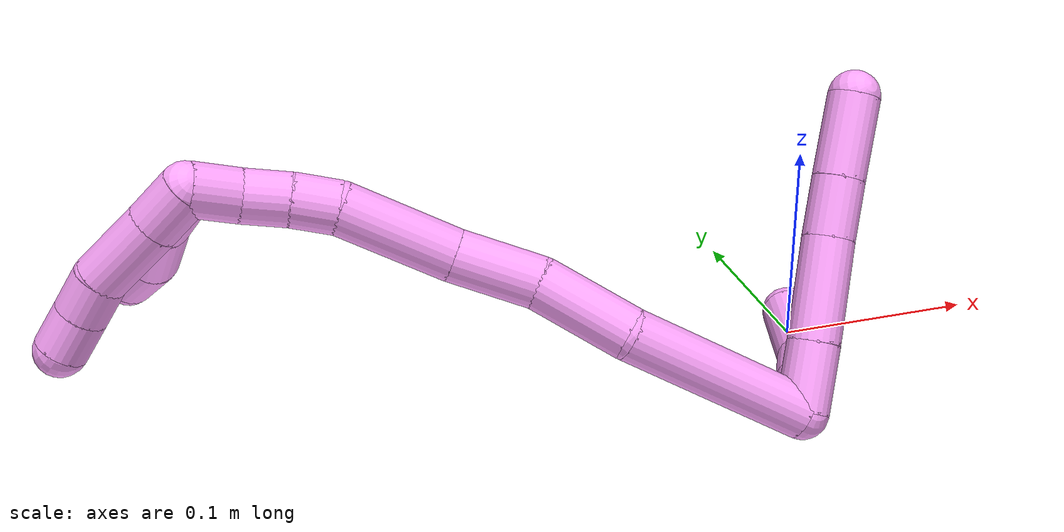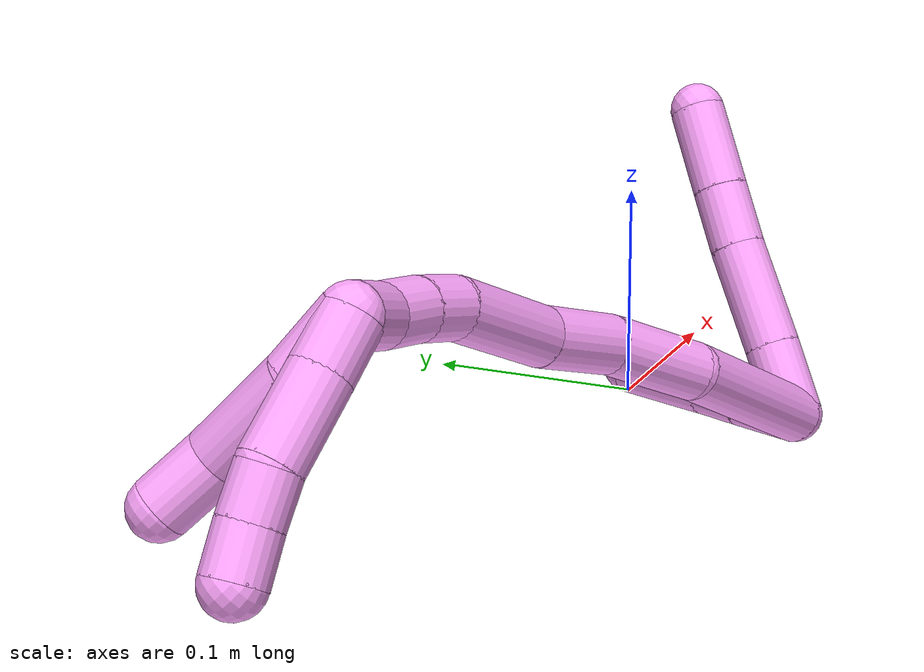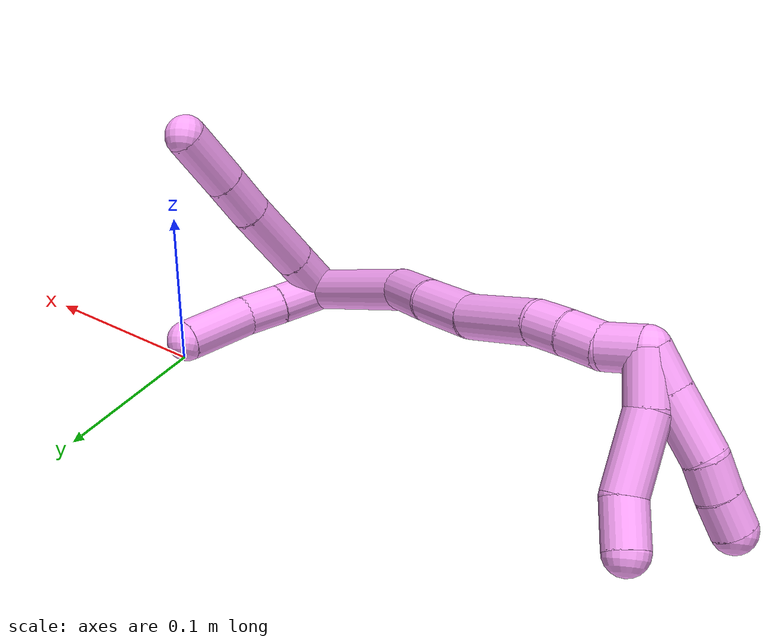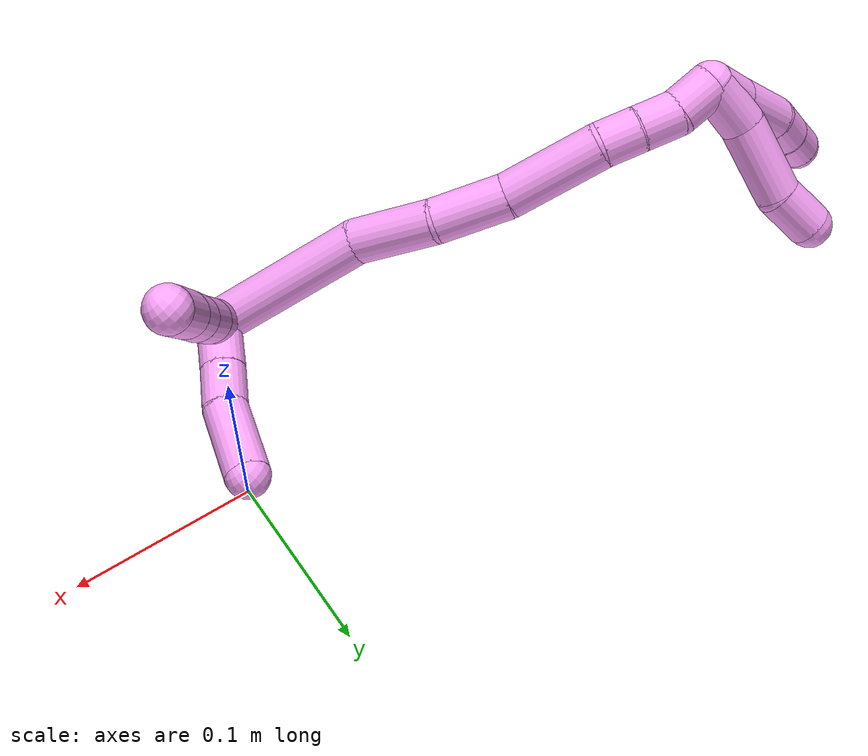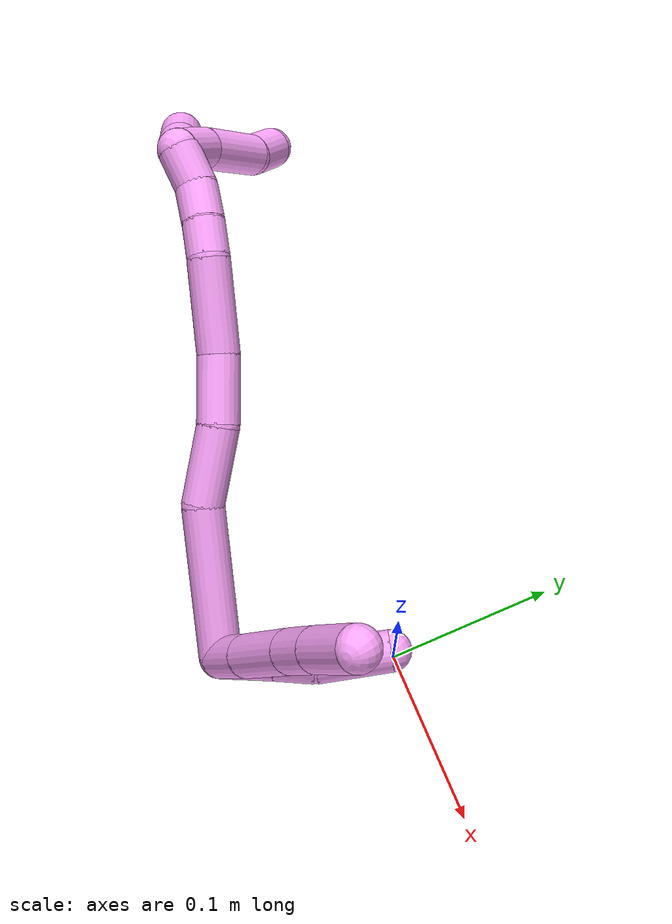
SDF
<sdf version="1.7">
 <world name="default">
  <model name="photoneo_s_sensor">
   <static>1</static>
   <pose>0 0 2 1.57079 1.57079 3.14159</pose>
   <link name="link">
    <inertial><mass>0.1</mass></inertial>
    <sensor name="sensor" type="depth">
     <update_rate>30</update_rate>
     <camera>
      <horizontal_fov>1.22</horizontal_fov>
      <image><width>1920</width><height>1200</height><format>B8G8R8</format></image>
      <clip><near>0.1</near><far>4</far></clip>
      <depth_camera><output>points</output></depth_camera>
     </camera>
     <plugin name="camera_plugin" filename="libgazebo_ros_depth_camera.so">
      <baseline>0.2</baseline>
      <alwaysOn>1</alwaysOn>
      <updateRate>0.0</updateRate>
      <cameraName>camera_ir</cameraName>
      <imageTopicName>/camera/color/image_raw</imageTopicName>
      <cameraInfoTopicName>/camera/color/camera_info</cameraInfoTopicName>
      <depthImageTopicName>/camera/depth/image_raw</depthImageTopicName>
      <depthImageCameraInfoTopicName>/camera/depth/camera_info</depthImageCameraInfoTopicName>
      <pointCloudTopicName>/camera/depth/points</pointCloudTopicName>
      <frameName>fr_optical</frameName>
      <pointCloudCutoff>0.1</pointCloudCutoff>
      <pointCloudCutoffMax>2.0</pointCloudCutoffMax>
      <distortionK1>0</distortionK1>
      <distortionK2>0</distortionK2>
      <distortionK3>0</distortionK3>
      <distortionT1>0</distortionT1>
      <distortionT2>0</distortionT2>
      <CxPrime>0</CxPrime>
      <Cx>0</Cx>
      <Cy>0</Cy>
      <focalLength>0</focalLength>
      <hackBaseline>0</hackBaseline>
     </plugin>
    </sensor>
   </link>
  </model>
  <model name="bin">
   <static>1</static>
   <link name="bottom">
    <collision name="collision-bottom">
     <pose>0 0 -0.01 0 -0 0</pose>
     <geometry><box><size>0.8 0.6 0.02</size></box></geometry>
     <surface>
      <friction><ode><mu>100</mu><mu2>100</mu2></ode></friction>
      <contact><collide_bitmask>65535</collide_bitmask></contact>
     </surface>
    </collision>
   </link>
   <link name="west_wall">
    <collision name="collision-west_wall">
     <pose>-0.41 0 0.1 0 -0 0</pose>
     <geometry><box><size>0.02 0.6 0.2</size></box></geometry>
     <surface>
      <friction><ode><mu>100</mu><mu2>100</mu2></ode></friction>
      <contact><collide_bitmask>65535</collide_bitmask></contact>
     </surface>
    </collision>
   </link>
   <link name="east_wall">
    <collision name="collision-east_wall">
     <pose>0.41 0 0.1 0 -0 0</pose>
     <geometry><box><size>0.02 0.6 0.2</size></box></geometry>
     <surface>
      <friction><ode><mu>100</mu><mu2>100</mu2></ode></friction>
      <contact><collide_bitmask>65535</collide_bitmask></contact>
     </surface>
    </collision>
   </link>
   <link name="south_wall">
    <collision name="collision-south_wall">
     <pose>0 -0.31 0.1 0 -0 0</pose>
     <geometry><box><size>0.8 0.02 0.2</size></box></geometry>
     <surface>
      <friction><ode><mu>100</mu><mu2>100</mu2></ode></friction>
      <contact><collide_bitmask>65535</collide_bitmask></contact>
     </surface>
    </collision>
   </link>
   <link name="north_wall">
    <collision name="collision-north_wall">
     <pose>0 0.31 0.1 0 -0 0</pose>
     <geometry><box><size>0.8 0.02 0.2</size></box></geometry>
     <surface>
      <friction><ode><mu>100</mu><mu2>100</mu2></ode></friction>
      <contact><collide_bitmask>65535</collide_bitmask></contact>
     </surface>
    </collision>
   </link>
  </model>
  <model name="4">
   <static>0</static>
   <link name="4">
    <collision name="collision-cylinder-e_1_2_8">
     <pose>-0.009364 -0.011858 -0.006266 2.05689 -0.609514 -0.962144</pose>
     <geometry><cylinder><radius>0.0125</radius><length>0.032714</length></cylinder></geometry>
     <surface>
      <friction><ode><mu>1.16</mu><mu2>1.16</mu2><slip1>0</slip1><slip2>0</slip2></ode></friction>
      <contact><ode><kp>1e+06</kp><kd>1</kd><max_vel>0</max_vel><min_depth>0.001</min_depth></ode></contact>
     </surface>
    </collision>
    <visual name="visual-cylinder-e_1_2_8">
     <pose>-0.009364 -0.011858 -0.006266 2.05689 -0.609514 -0.962144</pose>
     <geometry><cylinder><radius>0.0125</radius><length>0.032714</length></cylinder></geometry>
     <material><ambient>1 0.65098 0.996078 1</ambient></material>
    </visual>
    <collision name="collision-cylinder-e_2_8_9">
     <pose>-0.033213 -0.041235 -0.021553 2.04636 -0.633892 -0.986945</pose>
     <geometry><cylinder><radius>0.0125</radius><length>0.048914</length></cylinder></geometry>
     <surface>
      <friction><ode><mu>1.16</mu><mu2>1.16</mu2><slip1>0</slip1><slip2>0</slip2></ode></friction>
      <contact><ode><kp>1e+06</kp><kd>1</kd><max_vel>0</max_vel><min_depth>0.001</min_depth></ode></contact>
     </surface>
    </collision>
    <visual name="visual-cylinder-e_2_8_9">
     <pose>-0.033213 -0.041235 -0.021553 2.04636 -0.633892 -0.986945</pose>
     <geometry><cylinder><radius>0.0125</radius><length>0.048914</length></cylinder></geometry>
     <material><ambient>1 0.65098 0.996078 1</ambient></material>
    </visual>
    <collision name="collision-cylinder-e_3_9_10">
     <pose>-0.055996 -0.0688 -0.036472 2.10164 -0.618957 -1.01867</pose>
     <geometry><cylinder><radius>0.0125</radius><length>0.028603</length></cylinder></geometry>
     <surface>
      <friction><ode><mu>1.16</mu><mu2>1.16</mu2><slip1>0</slip1><slip2>0</slip2></ode></friction>
      <contact><ode><kp>1e+06</kp><kd>1</kd><max_vel>0</max_vel><min_depth>0.001</min_depth></ode></contact>
     </surface>
    </collision>
    <visual name="visual-cylinder-e_3_9_10">
     <pose>-0.055996 -0.0688 -0.036472 2.10164 -0.618957 -1.01867</pose>
     <geometry><cylinder><radius>0.0125</radius><length>0.028603</length></cylinder></geometry>
     <material><ambient>1 0.65098 0.996078 1</ambient></material>
    </visual>
    <collision name="collision-cylinder-e_4_10_6">
     <pose>-0.075544 -0.093025 -0.050601 2.09678 -0.601372 -0.98805</pose>
     <geometry><cylinder><radius>0.0125</radius><length>0.039769</length></cylinder></geometry>
     <surface>
      <friction><ode><mu>1.16</mu><mu2>1.16</mu2><slip1>0</slip1><slip2>0</slip2></ode></friction>
      <contact><ode><kp>1e+06</kp><kd>1</kd><max_vel>0</max_vel><min_depth>0.001</min_depth></ode></contact>
     </surface>
    </collision>
    <visual name="visual-cylinder-e_4_10_6">
     <pose>-0.075544 -0.093025 -0.050601 2.09678 -0.601372 -0.98805</pose>
     <geometry><cylinder><radius>0.0125</radius><length>0.039769</length></cylinder></geometry>
     <material><ambient>1 0.65098 0.996078 1</ambient></material>
    </visual>
    <collision name="collision-cylinder-e_1_2_11">
     <pose>-0.001791 -0.013565 0.007407 1.07099 -0.115339 -0.068483</pose>
     <geometry><cylinder><radius>0.0125</radius><length>0.031118</length></cylinder></geometry>
     <surface>
      <friction><ode><mu>1.16</mu><mu2>1.16</mu2><slip1>0</slip1><slip2>0</slip2></ode></friction>
      <contact><ode><kp>1e+06</kp><kd>1</kd><max_vel>0</max_vel><min_depth>0.001</min_depth></ode></contact>
     </surface>
    </collision>
    <visual name="visual-cylinder-e_1_2_11">
     <pose>-0.001791 -0.013565 0.007407 1.07099 -0.115339 -0.068483</pose>
     <geometry><cylinder><radius>0.0125</radius><length>0.031118</length></cylinder></geometry>
     <material><ambient>1 0.65098 0.996078 1</ambient></material>
    </visual>
    <collision name="collision-cylinder-e_2_11_12">
     <pose>-0.004712 -0.037863 0.020399 1.09098 -0.093212 -0.056598</pose>
     <geometry><cylinder><radius>0.0125</radius><length>0.024303</length></cylinder></geometry>
     <surface>
      <friction><ode><mu>1.16</mu><mu2>1.16</mu2><slip1>0</slip1><slip2>0</slip2></ode></friction>
      <contact><ode><kp>1e+06</kp><kd>1</kd><max_vel>0</max_vel><min_depth>0.001</min_depth></ode></contact>
     </surface>
    </collision>
    <visual name="visual-cylinder-e_2_11_12">
     <pose>-0.004712 -0.037863 0.020399 1.09098 -0.093212 -0.056598</pose>
     <geometry><cylinder><radius>0.0125</radius><length>0.024303</length></cylinder></geometry>
     <material><ambient>1 0.65098 0.996078 1</ambient></material>
    </visual>
    <collision name="collision-cylinder-e_3_12_5">
     <pose>-0.012491 -0.066415 0.037607 0.992825 -0.302875 -0.164944</pose>
     <geometry><cylinder><radius>0.0125</radius><length>0.044579</length></cylinder></geometry>
     <surface>
      <friction><ode><mu>1.16</mu><mu2>1.16</mu2><slip1>0</slip1><slip2>0</slip2></ode></friction>
      <contact><ode><kp>1e+06</kp><kd>1</kd><max_vel>0</max_vel><min_depth>0.001</min_depth></ode></contact>
     </surface>
    </collision>
    <visual name="visual-cylinder-e_3_12_5">
     <pose>-0.012491 -0.066415 0.037607 0.992825 -0.302875 -0.164944</pose>
     <geometry><cylinder><radius>0.0125</radius><length>0.044579</length></cylinder></geometry>
     <material><ambient>1 0.65098 0.996078 1</ambient></material>
    </visual>
    <collision name="collision-cylinder-e_1_2_13">
     <pose>-0.041728 0.016325 0.005831 -1.22777 -1.17706 0.879291</pose>
     <geometry><cylinder><radius>0.0125</radius><length>0.090372</length></cylinder></geometry>
     <surface>
      <friction><ode><mu>1.16</mu><mu2>1.16</mu2><slip1>0</slip1><slip2>0</slip2></ode></friction>
      <contact><ode><kp>1e+06</kp><kd>1</kd><max_vel>0</max_vel><min_depth>0.001</min_depth></ode></contact>
     </surface>
    </collision>
    <visual name="visual-cylinder-e_1_2_13">
     <pose>-0.041728 0.016325 0.005831 -1.22777 -1.17706 0.879291</pose>
     <geometry><cylinder><radius>0.0125</radius><length>0.090372</length></cylinder></geometry>
     <material><ambient>1 0.65098 0.996078 1</ambient></material>
    </visual>
    <collision name="collision-cylinder-e_2_13_14">
     <pose>-0.105407 0.035566 0.018889 -0.383367 -1.2296 0.272359</pose>
     <geometry><cylinder><radius>0.0125</radius><length>0.046586</length></cylinder></geometry>
     <surface>
      <friction><ode><mu>1.16</mu><mu2>1.16</mu2><slip1>0</slip1><slip2>0</slip2></ode></friction>
      <contact><ode><kp>1e+06</kp><kd>1</kd><max_vel>0</max_vel><min_depth>0.001</min_depth></ode></contact>
     </surface>
    </collision>
    <visual name="visual-cylinder-e_2_13_14">
     <pose>-0.105407 0.035566 0.018889 -0.383367 -1.2296 0.272359</pose>
     <geometry><cylinder><radius>0.0125</radius><length>0.046586</length></cylinder></geometry>
     <material><ambient>1 0.65098 0.996078 1</ambient></material>
    </visual>
    <collision name="collision-cylinder-e_3_14_15">
     <pose>-0.145187 0.045589 0.032749 -0.820066 -1.07166 0.505169</pose>
     <geometry><cylinder><radius>0.0125</radius><length>0.040615</length></cylinder></geometry>
     <surface>
      <friction><ode><mu>1.16</mu><mu2>1.16</mu2><slip1>0</slip1><slip2>0</slip2></ode></friction>
      <contact><ode><kp>1e+06</kp><kd>1</kd><max_vel>0</max_vel><min_depth>0.001</min_depth></ode></contact>
     </surface>
    </collision>
    <visual name="visual-cylinder-e_3_14_15">
     <pose>-0.145187 0.045589 0.032749 -0.820066 -1.07166 0.505169</pose>
     <geometry><cylinder><radius>0.0125</radius><length>0.040615</length></cylinder></geometry>
     <material><ambient>1 0.65098 0.996078 1</ambient></material>
    </visual>
    <collision name="collision-cylinder-e_4_15_16">
     <pose>-0.18814 0.063046 0.043913 -1.15795 -1.14816 0.799974</pose>
     <geometry><cylinder><radius>0.0125</radius><length>0.055095</length></cylinder></geometry>
     <surface>
      <friction><ode><mu>1.16</mu><mu2>1.16</mu2><slip1>0</slip1><slip2>0</slip2></ode></friction>
      <contact><ode><kp>1e+06</kp><kd>1</kd><max_vel>0</max_vel><min_depth>0.001</min_depth></ode></contact>
     </surface>
    </collision>
    <visual name="visual-cylinder-e_4_15_16">
     <pose>-0.18814 0.063046 0.043913 -1.15795 -1.14816 0.799974</pose>
     <geometry><cylinder><radius>0.0125</radius><length>0.055095</length></cylinder></geometry>
     <material><ambient>1 0.65098 0.996078 1</ambient></material>
    </visual>
    <collision name="collision-cylinder-e_5_16_17">
     <pose>-0.221829 0.078838 0.051874 -1.00881 -0.926666 0.538219</pose>
     <geometry><cylinder><radius>0.0125</radius><length>0.021422</length></cylinder></geometry>
     <surface>
      <friction><ode><mu>1.16</mu><mu2>1.16</mu2><slip1>0</slip1><slip2>0</slip2></ode></friction>
      <contact><ode><kp>1e+06</kp><kd>1</kd><max_vel>0</max_vel><min_depth>0.001</min_depth></ode></contact>
     </surface>
    </collision>
    <visual name="visual-cylinder-e_5_16_17">
     <pose>-0.221829 0.078838 0.051874 -1.00881 -0.926666 0.538219</pose>
     <geometry><cylinder><radius>0.0125</radius><length>0.021422</length></cylinder></geometry>
     <material><ambient>1 0.65098 0.996078 1</ambient></material>
    </visual>
    <collision name="collision-cylinder-e_6_17_18">
     <pose>-0.238677 0.090691 0.059153 -1.02971 -0.836452 0.492677</pose>
     <geometry><cylinder><radius>0.0125</radius><length>0.022319</length></cylinder></geometry>
     <surface>
      <friction><ode><mu>1.16</mu><mu2>1.16</mu2><slip1>0</slip1><slip2>0</slip2></ode></friction>
      <contact><ode><kp>1e+06</kp><kd>1</kd><max_vel>0</max_vel><min_depth>0.001</min_depth></ode></contact>
     </surface>
    </collision>
    <visual name="visual-cylinder-e_6_17_18">
     <pose>-0.238677 0.090691 0.059153 -1.02971 -0.836452 0.492677</pose>
     <geometry><cylinder><radius>0.0125</radius><length>0.022319</length></cylinder></geometry>
     <material><ambient>1 0.65098 0.996078 1</ambient></material>
    </visual>
    <collision name="collision-cylinder-e_7_18_1">
     <pose>-0.255572 0.105108 0.063931 -1.45565 -0.818437 0.737511</pose>
     <geometry><cylinder><radius>0.0125</radius><length>0.023592</length></cylinder></geometry>
     <surface>
      <friction><ode><mu>1.16</mu><mu2>1.16</mu2><slip1>0</slip1><slip2>0</slip2></ode></friction>
      <contact><ode><kp>1e+06</kp><kd>1</kd><max_vel>0</max_vel><min_depth>0.001</min_depth></ode></contact>
     </surface>
    </collision>
    <visual name="visual-cylinder-e_7_18_1">
     <pose>-0.255572 0.105108 0.063931 -1.45565 -0.818437 0.737511</pose>
     <geometry><cylinder><radius>0.0125</radius><length>0.023592</length></cylinder></geometry>
     <material><ambient>1 0.65098 0.996078 1</ambient></material>
    </visual>
    <collision name="collision-cylinder-e_1_1_19">
     <pose>-0.263835 0.119659 0.074508 -0.595797 0.029913 -0.009185</pose>
     <geometry><cylinder><radius>0.0125</radius><length>0.02333</length></cylinder></geometry>
     <surface>
      <friction><ode><mu>1.16</mu><mu2>1.16</mu2><slip1>0</slip1><slip2>0</slip2></ode></friction>
      <contact><ode><kp>1e+06</kp><kd>1</kd><max_vel>0</max_vel><min_depth>0.001</min_depth></ode></contact>
     </surface>
    </collision>
    <visual name="visual-cylinder-e_1_1_19">
     <pose>-0.263835 0.119659 0.074508 -0.595797 0.029913 -0.009185</pose>
     <geometry><cylinder><radius>0.0125</radius><length>0.02333</length></cylinder></geometry>
     <material><ambient>1 0.65098 0.996078 1</ambient></material>
    </visual>
    <collision name="collision-cylinder-e_2_19_20">
     <pose>-0.263403 0.136668 0.098947 -0.615895 0.004565 -0.001452</pose>
     <geometry><cylinder><radius>0.0125</radius><length>0.036233</length></cylinder></geometry>
     <surface>
      <friction><ode><mu>1.16</mu><mu2>1.16</mu2><slip1>0</slip1><slip2>0</slip2></ode></friction>
      <contact><ode><kp>1e+06</kp><kd>1</kd><max_vel>0</max_vel><min_depth>0.001</min_depth></ode></contact>
     </surface>
    </collision>
    <visual name="visual-cylinder-e_2_19_20">
     <pose>-0.263403 0.136668 0.098947 -0.615895 0.004565 -0.001452</pose>
     <geometry><cylinder><radius>0.0125</radius><length>0.036233</length></cylinder></geometry>
     <material><ambient>1 0.65098 0.996078 1</ambient></material>
    </visual>
    <collision name="collision-cylinder-e_3_20_21">
     <pose>-0.260907 0.152336 0.122006 -0.561442 0.24216 -0.070138</pose>
     <geometry><cylinder><radius>0.0125</radius><length>0.020132</length></cylinder></geometry>
     <surface>
      <friction><ode><mu>1.16</mu><mu2>1.16</mu2><slip1>0</slip1><slip2>0</slip2></ode></friction>
      <contact><ode><kp>1e+06</kp><kd>1</kd><max_vel>0</max_vel><min_depth>0.001</min_depth></ode></contact>
     </surface>
    </collision>
    <visual name="visual-cylinder-e_3_20_21">
     <pose>-0.260907 0.152336 0.122006 -0.561442 0.24216 -0.070138</pose>
     <geometry><cylinder><radius>0.0125</radius><length>0.020132</length></cylinder></geometry>
     <material><ambient>1 0.65098 0.996078 1</ambient></material>
    </visual>
    <collision name="collision-cylinder-e_4_21_4">
     <pose>-0.255931 0.163452 0.138123 -0.645937 0.255165 -0.085814</pose>
     <geometry><cylinder><radius>0.0125</radius><length>0.020304</length></cylinder></geometry>
     <surface>
      <friction><ode><mu>1.16</mu><mu2>1.16</mu2><slip1>0</slip1><slip2>0</slip2></ode></friction>
      <contact><ode><kp>1e+06</kp><kd>1</kd><max_vel>0</max_vel><min_depth>0.001</min_depth></ode></contact>
     </surface>
    </collision>
    <visual name="visual-cylinder-e_4_21_4">
     <pose>-0.255931 0.163452 0.138123 -0.645937 0.255165 -0.085814</pose>
     <geometry><cylinder><radius>0.0125</radius><length>0.020304</length></cylinder></geometry>
     <material><ambient>1 0.65098 0.996078 1</ambient></material>
    </visual>
    <collision name="collision-cylinder-e_1_1_22">
     <pose>-0.263285 0.1146 0.079669 -0.099892 0.060314 -0.003016</pose>
     <geometry><cylinder><radius>0.0125</radius><length>0.029826</length></cylinder></geometry>
     <surface>
      <friction><ode><mu>1.16</mu><mu2>1.16</mu2><slip1>0</slip1><slip2>0</slip2></ode></friction>
      <contact><ode><kp>1e+06</kp><kd>1</kd><max_vel>0</max_vel><min_depth>0.001</min_depth></ode></contact>
     </surface>
    </collision>
    <visual name="visual-cylinder-e_1_1_22">
     <pose>-0.263285 0.1146 0.079669 -0.099892 0.060314 -0.003016</pose>
     <geometry><cylinder><radius>0.0125</radius><length>0.029826</length></cylinder></geometry>
     <material><ambient>1 0.65098 0.996078 1</ambient></material>
    </visual>
    <collision name="collision-cylinder-e_2_22_23">
     <pose>-0.259661 0.112441 0.11586 0.168773 0.124986 0.010586</pose>
     <geometry><cylinder><radius>0.0125</radius><length>0.043718</length></cylinder></geometry>
     <surface>
      <friction><ode><mu>1.16</mu><mu2>1.16</mu2><slip1>0</slip1><slip2>0</slip2></ode></friction>
      <contact><ode><kp>1e+06</kp><kd>1</kd><max_vel>0</max_vel><min_depth>0.001</min_depth></ode></contact>
     </surface>
    </collision>
    <visual name="visual-cylinder-e_2_22_23">
     <pose>-0.259661 0.112441 0.11586 0.168773 0.124986 0.010586</pose>
     <geometry><cylinder><radius>0.0125</radius><length>0.043718</length></cylinder></geometry>
     <material><ambient>1 0.65098 0.996078 1</ambient></material>
    </visual>
    <collision name="collision-cylinder-e_3_23_3">
     <pose>-0.257984 0.109948 0.150377 -0.087287 -0.079317 0.003466</pose>
     <geometry><cylinder><radius>0.0125</radius><length>0.026456</length></cylinder></geometry>
     <surface>
      <friction><ode><mu>1.16</mu><mu2>1.16</mu2><slip1>0</slip1><slip2>0</slip2></ode></friction>
      <contact><ode><kp>1e+06</kp><kd>1</kd><max_vel>0</max_vel><min_depth>0.001</min_depth></ode></contact>
     </surface>
    </collision>
    <visual name="visual-cylinder-e_3_23_3">
     <pose>-0.257984 0.109948 0.150377 -0.087287 -0.079317 0.003466</pose>
     <geometry><cylinder><radius>0.0125</radius><length>0.026456</length></cylinder></geometry>
     <material><ambient>1 0.65098 0.996078 1</ambient></material>
    </visual>
    <collision name="collision-sphere-3">
     <pose>-0.259032 0.111097 0.163513 0 -0 0</pose>
     <geometry><sphere><radius>0.0125</radius></sphere></geometry>
     <surface>
      <friction><ode><mu>1.16</mu><mu2>1.16</mu2><slip1>0</slip1><slip2>0</slip2></ode></friction>
      <contact><ode><kp>1e+06</kp><kd>1</kd><max_vel>0</max_vel><min_depth>0.001</min_depth></ode></contact>
     </surface>
    </collision>
    <visual name="visual-sphere-3">
     <pose>-0.259032 0.111097 0.163513 0 -0 0</pose>
     <geometry><sphere><radius>0.0125</radius></sphere></geometry>
     <material><ambient>1 0.65098 0.996078 1</ambient></material>
    </visual>
    <collision name="collision-sphere-23">
     <pose>-0.256936 0.108798 0.137241 0 -0 0</pose>
     <geometry><sphere><radius>0.0125</radius></sphere></geometry>
     <surface>
      <friction><ode><mu>1.16</mu><mu2>1.16</mu2><slip1>0</slip1><slip2>0</slip2></ode></friction>
      <contact><ode><kp>1e+06</kp><kd>1</kd><max_vel>0</max_vel><min_depth>0.001</min_depth></ode></contact>
     </surface>
    </collision>
    <visual name="visual-sphere-23">
     <pose>-0.256936 0.108798 0.137241 0 -0 0</pose>
     <geometry><sphere><radius>0.0125</radius></sphere></geometry>
     <material><ambient>1 0.65098 0.996078 1</ambient></material>
    </visual>
    <collision name="collision-sphere-22">
     <pose>-0.262386 0.116085 0.09448 0 -0 0</pose>
     <geometry><sphere><radius>0.0125</radius></sphere></geometry>
     <surface>
      <friction><ode><mu>1.16</mu><mu2>1.16</mu2><slip1>0</slip1><slip2>0</slip2></ode></friction>
      <contact><ode><kp>1e+06</kp><kd>1</kd><max_vel>0</max_vel><min_depth>0.001</min_depth></ode></contact>
     </surface>
    </collision>
    <visual name="visual-sphere-22">
     <pose>-0.262386 0.116085 0.09448 0 -0 0</pose>
     <geometry><sphere><radius>0.0125</radius></sphere></geometry>
     <material><ambient>1 0.65098 0.996078 1</ambient></material>
    </visual>
    <collision name="collision-sphere-4">
     <pose>-0.253368 0.169365 0.145967 0 -0 0</pose>
     <geometry><sphere><radius>0.0125</radius></sphere></geometry>
     <surface>
      <friction><ode><mu>1.16</mu><mu2>1.16</mu2><slip1>0</slip1><slip2>0</slip2></ode></friction>
      <contact><ode><kp>1e+06</kp><kd>1</kd><max_vel>0</max_vel><min_depth>0.001</min_depth></ode></contact>
     </surface>
    </collision>
    <visual name="visual-sphere-4">
     <pose>-0.253368 0.169365 0.145967 0 -0 0</pose>
     <geometry><sphere><radius>0.0125</radius></sphere></geometry>
     <material><ambient>1 0.65098 0.996078 1</ambient></material>
    </visual>
    <collision name="collision-sphere-21">
     <pose>-0.258493 0.157539 0.130279 0 -0 0</pose>
     <geometry><sphere><radius>0.0125</radius></sphere></geometry>
     <surface>
      <friction><ode><mu>1.16</mu><mu2>1.16</mu2><slip1>0</slip1><slip2>0</slip2></ode></friction>
      <contact><ode><kp>1e+06</kp><kd>1</kd><max_vel>0</max_vel><min_depth>0.001</min_depth></ode></contact>
     </surface>
    </collision>
    <visual name="visual-sphere-21">
     <pose>-0.258493 0.157539 0.130279 0 -0 0</pose>
     <geometry><sphere><radius>0.0125</radius></sphere></geometry>
     <material><ambient>1 0.65098 0.996078 1</ambient></material>
    </visual>
    <collision name="collision-sphere-20">
     <pose>-0.263321 0.147133 0.113734 0 -0 0</pose>
     <geometry><sphere><radius>0.0125</radius></sphere></geometry>
     <surface>
      <friction><ode><mu>1.16</mu><mu2>1.16</mu2><slip1>0</slip1><slip2>0</slip2></ode></friction>
      <contact><ode><kp>1e+06</kp><kd>1</kd><max_vel>0</max_vel><min_depth>0.001</min_depth></ode></contact>
     </surface>
    </collision>
    <visual name="visual-sphere-20">
     <pose>-0.263321 0.147133 0.113734 0 -0 0</pose>
     <geometry><sphere><radius>0.0125</radius></sphere></geometry>
     <material><ambient>1 0.65098 0.996078 1</ambient></material>
    </visual>
    <collision name="collision-sphere-11">
     <pose>-0.003581 -0.02713 0.014814 0 -0 0</pose>
     <geometry><sphere><radius>0.0125</radius></sphere></geometry>
     <surface>
      <friction><ode><mu>1.16</mu><mu2>1.16</mu2><slip1>0</slip1><slip2>0</slip2></ode></friction>
      <contact><ode><kp>1e+06</kp><kd>1</kd><max_vel>0</max_vel><min_depth>0.001</min_depth></ode></contact>
     </surface>
    </collision>
    <visual name="visual-sphere-11">
     <pose>-0.003581 -0.02713 0.014814 0 -0 0</pose>
     <geometry><sphere><radius>0.0125</radius></sphere></geometry>
     <material><ambient>1 0.65098 0.996078 1</ambient></material>
    </visual>
    <collision name="collision-sphere-6">
     <pose>-0.086794 -0.107204 -0.058833 0 -0 0</pose>
     <geometry><sphere><radius>0.0125</radius></sphere></geometry>
     <surface>
      <friction><ode><mu>1.16</mu><mu2>1.16</mu2><slip1>0</slip1><slip2>0</slip2></ode></friction>
      <contact><ode><kp>1e+06</kp><kd>1</kd><max_vel>0</max_vel><min_depth>0.001</min_depth></ode></contact>
     </surface>
    </collision>
    <visual name="visual-sphere-6">
     <pose>-0.086794 -0.107204 -0.058833 0 -0 0</pose>
     <geometry><sphere><radius>0.0125</radius></sphere></geometry>
     <material><ambient>1 0.65098 0.996078 1</ambient></material>
    </visual>
    <collision name="collision-sphere-10">
     <pose>-0.064294 -0.078845 -0.042369 0 -0 0</pose>
     <geometry><sphere><radius>0.0125</radius></sphere></geometry>
     <surface>
      <friction><ode><mu>1.16</mu><mu2>1.16</mu2><slip1>0</slip1><slip2>0</slip2></ode></friction>
      <contact><ode><kp>1e+06</kp><kd>1</kd><max_vel>0</max_vel><min_depth>0.001</min_depth></ode></contact>
     </surface>
    </collision>
    <visual name="visual-sphere-10">
     <pose>-0.064294 -0.078845 -0.042369 0 -0 0</pose>
     <geometry><sphere><radius>0.0125</radius></sphere></geometry>
     <material><ambient>1 0.65098 0.996078 1</ambient></material>
    </visual>
    <collision name="collision-sphere-9">
     <pose>-0.047699 -0.058754 -0.030575 0 -0 0</pose>
     <geometry><sphere><radius>0.0125</radius></sphere></geometry>
     <surface>
      <friction><ode><mu>1.16</mu><mu2>1.16</mu2><slip1>0</slip1><slip2>0</slip2></ode></friction>
      <contact><ode><kp>1e+06</kp><kd>1</kd><max_vel>0</max_vel><min_depth>0.001</min_depth></ode></contact>
     </surface>
    </collision>
    <visual name="visual-sphere-9">
     <pose>-0.047699 -0.058754 -0.030575 0 -0 0</pose>
     <geometry><sphere><radius>0.0125</radius></sphere></geometry>
     <material><ambient>1 0.65098 0.996078 1</ambient></material>
    </visual>
    <collision name="collision-sphere-2">
     <geometry><sphere><radius>0.0125</radius></sphere></geometry>
     <surface>
      <friction><ode><mu>1.16</mu><mu2>1.16</mu2><slip1>0</slip1><slip2>0</slip2></ode></friction>
      <contact><ode><kp>1e+06</kp><kd>1</kd><max_vel>0</max_vel><min_depth>0.001</min_depth></ode></contact>
     </surface>
    </collision>
    <visual name="visual-sphere-2">
     <geometry><sphere><radius>0.0125</radius></sphere></geometry>
     <material><ambient>1 0.65098 0.996078 1</ambient></material>
    </visual>
    <collision name="collision-sphere-19">
     <pose>-0.263486 0.126202 0.084159 0 -0 0</pose>
     <geometry><sphere><radius>0.0125</radius></sphere></geometry>
     <surface>
      <friction><ode><mu>1.16</mu><mu2>1.16</mu2><slip1>0</slip1><slip2>0</slip2></ode></friction>
      <contact><ode><kp>1e+06</kp><kd>1</kd><max_vel>0</max_vel><min_depth>0.001</min_depth></ode></contact>
     </surface>
    </collision>
    <visual name="visual-sphere-19">
     <pose>-0.263486 0.126202 0.084159 0 -0 0</pose>
     <geometry><sphere><radius>0.0125</radius></sphere></geometry>
     <material><ambient>1 0.65098 0.996078 1</ambient></material>
    </visual>
    <collision name="collision-sphere-8">
     <pose>-0.018728 -0.023716 -0.012531 0 -0 0</pose>
     <geometry><sphere><radius>0.0125</radius></sphere></geometry>
     <surface>
      <friction><ode><mu>1.16</mu><mu2>1.16</mu2><slip1>0</slip1><slip2>0</slip2></ode></friction>
      <contact><ode><kp>1e+06</kp><kd>1</kd><max_vel>0</max_vel><min_depth>0.001</min_depth></ode></contact>
     </surface>
    </collision>
    <visual name="visual-sphere-8">
     <pose>-0.018728 -0.023716 -0.012531 0 -0 0</pose>
     <geometry><sphere><radius>0.0125</radius></sphere></geometry>
     <material><ambient>1 0.65098 0.996078 1</ambient></material>
    </visual>
    <collision name="collision-sphere-12">
     <pose>-0.005843 -0.048595 0.025984 0 -0 0</pose>
     <geometry><sphere><radius>0.0125</radius></sphere></geometry>
     <surface>
      <friction><ode><mu>1.16</mu><mu2>1.16</mu2><slip1>0</slip1><slip2>0</slip2></ode></friction>
      <contact><ode><kp>1e+06</kp><kd>1</kd><max_vel>0</max_vel><min_depth>0.001</min_depth></ode></contact>
     </surface>
    </collision>
    <visual name="visual-sphere-12">
     <pose>-0.005843 -0.048595 0.025984 0 -0 0</pose>
     <geometry><sphere><radius>0.0125</radius></sphere></geometry>
     <material><ambient>1 0.65098 0.996078 1</ambient></material>
    </visual>
    <collision name="collision-sphere-5">
     <pose>-0.01914 -0.084234 0.04923 0 -0 0</pose>
     <geometry><sphere><radius>0.0125</radius></sphere></geometry>
     <surface>
      <friction><ode><mu>1.16</mu><mu2>1.16</mu2><slip1>0</slip1><slip2>0</slip2></ode></friction>
      <contact><ode><kp>1e+06</kp><kd>1</kd><max_vel>0</max_vel><min_depth>0.001</min_depth></ode></contact>
     </surface>
    </collision>
    <visual name="visual-sphere-5">
     <pose>-0.01914 -0.084234 0.04923 0 -0 0</pose>
     <geometry><sphere><radius>0.0125</radius></sphere></geometry>
     <material><ambient>1 0.65098 0.996078 1</ambient></material>
    </visual>
    <collision name="collision-sphere-13">
     <pose>-0.083457 0.03265 0.011661 0 -0 0</pose>
     <geometry><sphere><radius>0.0125</radius></sphere></geometry>
     <surface>
      <friction><ode><mu>1.16</mu><mu2>1.16</mu2><slip1>0</slip1><slip2>0</slip2></ode></friction>
      <contact><ode><kp>1e+06</kp><kd>1</kd><max_vel>0</max_vel><min_depth>0.001</min_depth></ode></contact>
     </surface>
    </collision>
    <visual name="visual-sphere-13">
     <pose>-0.083457 0.03265 0.011661 0 -0 0</pose>
     <geometry><sphere><radius>0.0125</radius></sphere></geometry>
     <material><ambient>1 0.65098 0.996078 1</ambient></material>
    </visual>
    <collision name="collision-sphere-14">
     <pose>-0.127357 0.038481 0.026118 0 -0 0</pose>
     <geometry><sphere><radius>0.0125</radius></sphere></geometry>
     <surface>
      <friction><ode><mu>1.16</mu><mu2>1.16</mu2><slip1>0</slip1><slip2>0</slip2></ode></friction>
      <contact><ode><kp>1e+06</kp><kd>1</kd><max_vel>0</max_vel><min_depth>0.001</min_depth></ode></contact>
     </surface>
    </collision>
    <visual name="visual-sphere-14">
     <pose>-0.127357 0.038481 0.026118 0 -0 0</pose>
     <geometry><sphere><radius>0.0125</radius></sphere></geometry>
     <material><ambient>1 0.65098 0.996078 1</ambient></material>
    </visual>
    <collision name="collision-sphere-15">
     <pose>-0.163017 0.052696 0.03938 0 -0 0</pose>
     <geometry><sphere><radius>0.0125</radius></sphere></geometry>
     <surface>
      <friction><ode><mu>1.16</mu><mu2>1.16</mu2><slip1>0</slip1><slip2>0</slip2></ode></friction>
      <contact><ode><kp>1e+06</kp><kd>1</kd><max_vel>0</max_vel><min_depth>0.001</min_depth></ode></contact>
     </surface>
    </collision>
    <visual name="visual-sphere-15">
     <pose>-0.163017 0.052696 0.03938 0 -0 0</pose>
     <geometry><sphere><radius>0.0125</radius></sphere></geometry>
     <material><ambient>1 0.65098 0.996078 1</ambient></material>
    </visual>
    <collision name="collision-sphere-16">
     <pose>-0.213264 0.073396 0.048447 0 -0 0</pose>
     <geometry><sphere><radius>0.0125</radius></sphere></geometry>
     <surface>
      <friction><ode><mu>1.16</mu><mu2>1.16</mu2><slip1>0</slip1><slip2>0</slip2></ode></friction>
      <contact><ode><kp>1e+06</kp><kd>1</kd><max_vel>0</max_vel><min_depth>0.001</min_depth></ode></contact>
     </surface>
    </collision>
    <visual name="visual-sphere-16">
     <pose>-0.213264 0.073396 0.048447 0 -0 0</pose>
     <geometry><sphere><radius>0.0125</radius></sphere></geometry>
     <material><ambient>1 0.65098 0.996078 1</ambient></material>
    </visual>
    <collision name="collision-sphere-17">
     <pose>-0.230393 0.084281 0.055302 0 -0 0</pose>
     <geometry><sphere><radius>0.0125</radius></sphere></geometry>
     <surface>
      <friction><ode><mu>1.16</mu><mu2>1.16</mu2><slip1>0</slip1><slip2>0</slip2></ode></friction>
      <contact><ode><kp>1e+06</kp><kd>1</kd><max_vel>0</max_vel><min_depth>0.001</min_depth></ode></contact>
     </surface>
    </collision>
    <visual name="visual-sphere-17">
     <pose>-0.230393 0.084281 0.055302 0 -0 0</pose>
     <geometry><sphere><radius>0.0125</radius></sphere></geometry>
     <material><ambient>1 0.65098 0.996078 1</ambient></material>
    </visual>
    <collision name="collision-sphere-18">
     <pose>-0.24696 0.0971 0.063005 0 -0 0</pose>
     <geometry><sphere><radius>0.0125</radius></sphere></geometry>
     <surface>
      <friction><ode><mu>1.16</mu><mu2>1.16</mu2><slip1>0</slip1><slip2>0</slip2></ode></friction>
      <contact><ode><kp>1e+06</kp><kd>1</kd><max_vel>0</max_vel><min_depth>0.001</min_depth></ode></contact>
     </surface>
    </collision>
    <visual name="visual-sphere-18">
     <pose>-0.24696 0.0971 0.063005 0 -0 0</pose>
     <geometry><sphere><radius>0.0125</radius></sphere></geometry>
     <material><ambient>1 0.65098 0.996078 1</ambient></material>
    </visual>
    <collision name="collision-sphere-1">
     <pose>-0.264184 0.113116 0.064857 0 -0 0</pose>
     <geometry><sphere><radius>0.0125</radius></sphere></geometry>
     <surface>
      <friction><ode><mu>1.16</mu><mu2>1.16</mu2><slip1>0</slip1><slip2>0</slip2></ode></friction>
      <contact><ode><kp>1e+06</kp><kd>1</kd><max_vel>0</max_vel><min_depth>0.001</min_depth></ode></contact>
     </surface>
    </collision>
    <visual name="visual-sphere-1">
     <pose>-0.264184 0.113116 0.064857 0 -0 0</pose>
     <geometry><sphere><radius>0.0125</radius></sphere></geometry>
     <material><ambient>1 0.65098 0.996078 1</ambient></material>
    </visual>
    <inertial>
     <pose>-0.133993 0.036862 0.038917 0 -0 0</pose>
     <mass>0.75</mass>
     <inertia>
      <ixx>6.2e-05</ixx>
      <ixy>0</ixy>
      <ixz>0</ixz>
      <iyy>0.000135</iyy>
      <iyz>0</iyz>
      <izz>0.000119</izz>
     </inertia>
    </inertial>
   </link>
   <pose>-0.037458 -0.094053 0.013721 -2.80786 0.759406 -0.640492</pose>
  </model>
 </world>
</sdf>
